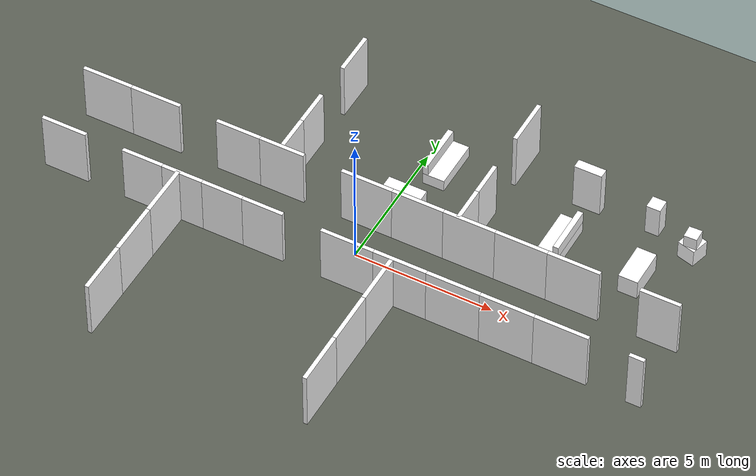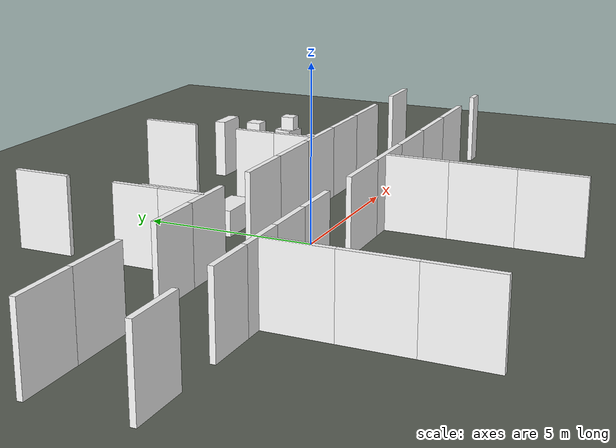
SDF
<sdf version="1.9">
 <world name="office_0">
  <model name="ground_plane">
   <static>true</static>
   <link name="link">
    <collision name="collision">
     <geometry><plane><normal>0 0 1</normal><size>300.000 300.000</size></plane></geometry>
     <surface><friction><ode><mu>1.0</mu><mu2>1.0</mu2></ode></friction></surface>
    </collision>
    <visual name="visual">
     <geometry><plane><normal>0 0 1</normal><size>300.000 300.000</size></plane></geometry>
     <material>
      <ambient>0.350 0.370 0.330 1</ambient>
      <diffuse>0.350 0.370 0.330 1</diffuse>
      <specular>0.08 0.08 0.08 1</specular>
     </material>
    </visual>
   </link>
  </model>
  <model name="wall_6">
   <static>true</static>
   <link name="link">
    <collision name="c0">
     <pose>-10.073 1.300 1.100 0.0000 0.0000 0.0000</pose>
     <geometry><box><size>1.856 0.150 2.200</size></box></geometry>
    </collision>
    <visual name="v0">
     <pose>-10.073 1.300 1.100 0.0000 0.0000 0.0000</pose>
     <geometry><box><size>1.856 0.150 2.200</size></box></geometry>
     <material>
      <ambient>1.000 1.000 1.000 1</ambient>
      <diffuse>1.000 1.000 1.000 1</diffuse>
      <specular>0.08 0.08 0.08 1</specular>
      <pbr>
       <metal>
        <albedo_map>model://omnivla_textures/materials/textures/poster_7.png</albedo_map>
        <roughness>0.85</roughness>
        <metalness>0.0</metalness>
       </metal>
      </pbr>
     </material>
    </visual>
    <collision name="c1">
     <pose>-8.219 1.300 1.100 0.0000 0.0000 0.0000</pose>
     <geometry><box><size>1.856 0.150 2.200</size></box></geometry>
    </collision>
    <visual name="v1">
     <pose>-8.219 1.300 1.100 0.0000 0.0000 0.0000</pose>
     <geometry><box><size>1.856 0.150 2.200</size></box></geometry>
     <material>
      <ambient>1.000 1.000 1.000 1</ambient>
      <diffuse>1.000 1.000 1.000 1</diffuse>
      <specular>0.08 0.08 0.08 1</specular>
      <pbr>
       <metal>
        <albedo_map>model://omnivla_textures/materials/textures/paint_salmon.png</albedo_map>
        <roughness>0.85</roughness>
        <metalness>0.0</metalness>
       </metal>
      </pbr>
     </material>
    </visual>
    <collision name="c2">
     <pose>-5.070 1.300 1.100 0.0000 0.0000 0.0000</pose>
     <geometry><box><size>1.645 0.150 2.200</size></box></geometry>
    </collision>
    <visual name="v2">
     <pose>-5.070 1.300 1.100 0.0000 0.0000 0.0000</pose>
     <geometry><box><size>1.645 0.150 2.200</size></box></geometry>
     <material>
      <ambient>1.000 1.000 1.000 1</ambient>
      <diffuse>1.000 1.000 1.000 1</diffuse>
      <specular>0.08 0.08 0.08 1</specular>
      <pbr>
       <metal>
        <albedo_map>model://omnivla_textures/materials/textures/poster_6.png</albedo_map>
        <roughness>0.85</roughness>
        <metalness>0.0</metalness>
       </metal>
      </pbr>
     </material>
    </visual>
    <collision name="c3">
     <pose>-3.427 1.300 1.100 0.0000 0.0000 0.0000</pose>
     <geometry><box><size>1.645 0.150 2.200</size></box></geometry>
    </collision>
    <visual name="v3">
     <pose>-3.427 1.300 1.100 0.0000 0.0000 0.0000</pose>
     <geometry><box><size>1.645 0.150 2.200</size></box></geometry>
     <material>
      <ambient>1.000 1.000 1.000 1</ambient>
      <diffuse>1.000 1.000 1.000 1</diffuse>
      <specular>0.08 0.08 0.08 1</specular>
      <pbr>
       <metal>
        <albedo_map>model://omnivla_textures/materials/textures/poster_3.png</albedo_map>
        <roughness>0.85</roughness>
        <metalness>0.0</metalness>
       </metal>
      </pbr>
     </material>
    </visual>
    <collision name="c4">
     <pose>-0.267 1.300 1.100 0.0000 0.0000 0.0000</pose>
     <geometry><box><size>1.878 0.150 2.200</size></box></geometry>
    </collision>
    <visual name="v4">
     <pose>-0.267 1.300 1.100 0.0000 0.0000 0.0000</pose>
     <geometry><box><size>1.878 0.150 2.200</size></box></geometry>
     <material>
      <ambient>1.000 1.000 1.000 1</ambient>
      <diffuse>1.000 1.000 1.000 1</diffuse>
      <specular>0.08 0.08 0.08 1</specular>
      <pbr>
       <metal>
        <albedo_map>model://omnivla_textures/materials/textures/paint_salmon.png</albedo_map>
        <roughness>0.85</roughness>
        <metalness>0.0</metalness>
       </metal>
      </pbr>
     </material>
    </visual>
    <collision name="c5">
     <pose>1.609 1.300 1.100 0.0000 0.0000 0.0000</pose>
     <geometry><box><size>1.878 0.150 2.200</size></box></geometry>
    </collision>
    <visual name="v5">
     <pose>1.609 1.300 1.100 0.0000 0.0000 0.0000</pose>
     <geometry><box><size>1.878 0.150 2.200</size></box></geometry>
     <material>
      <ambient>1.000 1.000 1.000 1</ambient>
      <diffuse>1.000 1.000 1.000 1</diffuse>
      <specular>0.08 0.08 0.08 1</specular>
      <pbr>
       <metal>
        <albedo_map>model://omnivla_textures/materials/textures/paint_salmon.png</albedo_map>
        <roughness>0.85</roughness>
        <metalness>0.0</metalness>
       </metal>
      </pbr>
     </material>
    </visual>
    <collision name="c6">
     <pose>3.485 1.300 1.100 0.0000 0.0000 0.0000</pose>
     <geometry><box><size>1.878 0.150 2.200</size></box></geometry>
    </collision>
    <visual name="v6">
     <pose>3.485 1.300 1.100 0.0000 0.0000 0.0000</pose>
     <geometry><box><size>1.878 0.150 2.200</size></box></geometry>
     <material>
      <ambient>1.000 1.000 1.000 1</ambient>
      <diffuse>1.000 1.000 1.000 1</diffuse>
      <specular>0.08 0.08 0.08 1</specular>
      <pbr>
       <metal>
        <albedo_map>model://omnivla_textures/materials/textures/poster_6.png</albedo_map>
        <roughness>0.85</roughness>
        <metalness>0.0</metalness>
       </metal>
      </pbr>
     </material>
    </visual>
    <collision name="c7">
     <pose>5.362 1.300 1.100 0.0000 0.0000 0.0000</pose>
     <geometry><box><size>1.878 0.150 2.200</size></box></geometry>
    </collision>
    <visual name="v7">
     <pose>5.362 1.300 1.100 0.0000 0.0000 0.0000</pose>
     <geometry><box><size>1.878 0.150 2.200</size></box></geometry>
     <material>
      <ambient>1.000 1.000 1.000 1</ambient>
      <diffuse>1.000 1.000 1.000 1</diffuse>
      <specular>0.08 0.08 0.08 1</specular>
      <pbr>
       <metal>
        <albedo_map>model://omnivla_textures/materials/textures/paint_salmon.png</albedo_map>
        <roughness>0.85</roughness>
        <metalness>0.0</metalness>
       </metal>
      </pbr>
     </material>
    </visual>
    <collision name="c8">
     <pose>7.238 1.300 1.100 0.0000 0.0000 0.0000</pose>
     <geometry><box><size>1.878 0.150 2.200</size></box></geometry>
    </collision>
    <visual name="v8">
     <pose>7.238 1.300 1.100 0.0000 0.0000 0.0000</pose>
     <geometry><box><size>1.878 0.150 2.200</size></box></geometry>
     <material>
      <ambient>1.000 1.000 1.000 1</ambient>
      <diffuse>1.000 1.000 1.000 1</diffuse>
      <specular>0.08 0.08 0.08 1</specular>
      <pbr>
       <metal>
        <albedo_map>model://omnivla_textures/materials/textures/poster_0.png</albedo_map>
        <roughness>0.85</roughness>
        <metalness>0.0</metalness>
       </metal>
      </pbr>
     </material>
    </visual>
    <collision name="c9">
     <pose>10.288 1.300 1.100 0.0000 0.0000 0.0000</pose>
     <geometry><box><size>1.426 0.150 2.200</size></box></geometry>
    </collision>
    <visual name="v9">
     <pose>10.288 1.300 1.100 0.0000 0.0000 0.0000</pose>
     <geometry><box><size>1.426 0.150 2.200</size></box></geometry>
     <material>
      <ambient>1.000 1.000 1.000 1</ambient>
      <diffuse>1.000 1.000 1.000 1</diffuse>
      <specular>0.08 0.08 0.08 1</specular>
      <pbr>
       <metal>
        <albedo_map>model://omnivla_textures/materials/textures/poster_5.png</albedo_map>
        <roughness>0.85</roughness>
        <metalness>0.0</metalness>
       </metal>
      </pbr>
     </material>
    </visual>
   </link>
  </model>
  <model name="wall_7">
   <static>true</static>
   <link name="link">
    <collision name="c0">
     <pose>-3.452 1.971 1.100 0.0000 0.0000 1.5708</pose>
     <geometry><box><size>1.344 0.150 2.200</size></box></geometry>
    </collision>
    <visual name="v0">
     <pose>-3.452 1.971 1.100 0.0000 0.0000 1.5708</pose>
     <geometry><box><size>1.344 0.150 2.200</size></box></geometry>
     <material>
      <ambient>1.000 1.000 1.000 1</ambient>
      <diffuse>1.000 1.000 1.000 1</diffuse>
      <specular>0.08 0.08 0.08 1</specular>
      <pbr>
       <metal>
        <albedo_map>model://omnivla_textures/materials/textures/paint_gray.png</albedo_map>
        <roughness>0.85</roughness>
        <metalness>0.0</metalness>
       </metal>
      </pbr>
     </material>
    </visual>
    <collision name="c1">
     <pose>-3.452 3.312 1.100 0.0000 0.0000 1.5708</pose>
     <geometry><box><size>1.344 0.150 2.200</size></box></geometry>
    </collision>
    <visual name="v1">
     <pose>-3.452 3.312 1.100 0.0000 0.0000 1.5708</pose>
     <geometry><box><size>1.344 0.150 2.200</size></box></geometry>
     <material>
      <ambient>1.000 1.000 1.000 1</ambient>
      <diffuse>1.000 1.000 1.000 1</diffuse>
      <specular>0.08 0.08 0.08 1</specular>
      <pbr>
       <metal>
        <albedo_map>model://omnivla_textures/materials/textures/paint_gray.png</albedo_map>
        <roughness>0.85</roughness>
        <metalness>0.0</metalness>
       </metal>
      </pbr>
     </material>
    </visual>
    <collision name="c2">
     <pose>-3.452 6.192 1.100 0.0000 0.0000 1.5708</pose>
     <geometry><box><size>1.619 0.150 2.200</size></box></geometry>
    </collision>
    <visual name="v2">
     <pose>-3.452 6.192 1.100 0.0000 0.0000 1.5708</pose>
     <geometry><box><size>1.619 0.150 2.200</size></box></geometry>
     <material>
      <ambient>1.000 1.000 1.000 1</ambient>
      <diffuse>1.000 1.000 1.000 1</diffuse>
      <specular>0.08 0.08 0.08 1</specular>
      <pbr>
       <metal>
        <albedo_map>model://omnivla_textures/materials/textures/paint_gray.png</albedo_map>
        <roughness>0.85</roughness>
        <metalness>0.0</metalness>
       </metal>
      </pbr>
     </material>
    </visual>
   </link>
  </model>
  <model name="wall_8">
   <static>true</static>
   <link name="link">
    <collision name="c0">
     <pose>3.079 1.938 1.100 0.0000 0.0000 1.5708</pose>
     <geometry><box><size>1.277 0.150 2.200</size></box></geometry>
    </collision>
    <visual name="v0">
     <pose>3.079 1.938 1.100 0.0000 0.0000 1.5708</pose>
     <geometry><box><size>1.277 0.150 2.200</size></box></geometry>
     <material>
      <ambient>1.000 1.000 1.000 1</ambient>
      <diffuse>1.000 1.000 1.000 1</diffuse>
      <specular>0.08 0.08 0.08 1</specular>
      <pbr>
       <metal>
        <albedo_map>model://omnivla_textures/materials/textures/brick_white.png</albedo_map>
        <roughness>0.85</roughness>
        <metalness>0.0</metalness>
       </metal>
      </pbr>
     </material>
    </visual>
    <collision name="c1">
     <pose>3.079 3.213 1.100 0.0000 0.0000 1.5708</pose>
     <geometry><box><size>1.277 0.150 2.200</size></box></geometry>
    </collision>
    <visual name="v1">
     <pose>3.079 3.213 1.100 0.0000 0.0000 1.5708</pose>
     <geometry><box><size>1.277 0.150 2.200</size></box></geometry>
     <material>
      <ambient>1.000 1.000 1.000 1</ambient>
      <diffuse>1.000 1.000 1.000 1</diffuse>
      <specular>0.08 0.08 0.08 1</specular>
      <pbr>
       <metal>
        <albedo_map>model://omnivla_textures/materials/textures/brick_white.png</albedo_map>
        <roughness>0.85</roughness>
        <metalness>0.0</metalness>
       </metal>
      </pbr>
     </material>
    </visual>
    <collision name="c2">
     <pose>3.079 6.125 1.100 0.0000 0.0000 1.5708</pose>
     <geometry><box><size>1.752 0.150 2.200</size></box></geometry>
    </collision>
    <visual name="v2">
     <pose>3.079 6.125 1.100 0.0000 0.0000 1.5708</pose>
     <geometry><box><size>1.752 0.150 2.200</size></box></geometry>
     <material>
      <ambient>1.000 1.000 1.000 1</ambient>
      <diffuse>1.000 1.000 1.000 1</diffuse>
      <specular>0.08 0.08 0.08 1</specular>
      <pbr>
       <metal>
        <albedo_map>model://omnivla_textures/materials/textures/brick_white.png</albedo_map>
        <roughness>0.85</roughness>
        <metalness>0.0</metalness>
       </metal>
      </pbr>
     </material>
    </visual>
   </link>
  </model>
  <model name="wall_9">
   <static>true</static>
   <link name="link">
    <collision name="c0">
     <pose>-10.162 -1.300 1.100 0.0000 0.0000 0.0000</pose>
     <geometry><box><size>1.677 0.150 2.200</size></box></geometry>
    </collision>
    <visual name="v0">
     <pose>-10.162 -1.300 1.100 0.0000 0.0000 0.0000</pose>
     <geometry><box><size>1.677 0.150 2.200</size></box></geometry>
     <material>
      <ambient>1.000 1.000 1.000 1</ambient>
      <diffuse>1.000 1.000 1.000 1</diffuse>
      <specular>0.08 0.08 0.08 1</specular>
      <pbr>
       <metal>
        <albedo_map>model://omnivla_textures/materials/textures/brick_red.png</albedo_map>
        <roughness>0.85</roughness>
        <metalness>0.0</metalness>
       </metal>
      </pbr>
     </material>
    </visual>
    <collision name="c1">
     <pose>-7.175 -1.300 1.100 0.0000 0.0000 0.0000</pose>
     <geometry><box><size>1.502 0.150 2.200</size></box></geometry>
    </collision>
    <visual name="v1">
     <pose>-7.175 -1.300 1.100 0.0000 0.0000 0.0000</pose>
     <geometry><box><size>1.502 0.150 2.200</size></box></geometry>
     <material>
      <ambient>1.000 1.000 1.000 1</ambient>
      <diffuse>1.000 1.000 1.000 1</diffuse>
      <specular>0.08 0.08 0.08 1</specular>
      <pbr>
       <metal>
        <albedo_map>model://omnivla_textures/materials/textures/brick_red.png</albedo_map>
        <roughness>0.85</roughness>
        <metalness>0.0</metalness>
       </metal>
      </pbr>
     </material>
    </visual>
    <collision name="c2">
     <pose>-5.674 -1.300 1.100 0.0000 0.0000 0.0000</pose>
     <geometry><box><size>1.502 0.150 2.200</size></box></geometry>
    </collision>
    <visual name="v2">
     <pose>-5.674 -1.300 1.100 0.0000 0.0000 0.0000</pose>
     <geometry><box><size>1.502 0.150 2.200</size></box></geometry>
     <material>
      <ambient>1.000 1.000 1.000 1</ambient>
      <diffuse>1.000 1.000 1.000 1</diffuse>
      <specular>0.08 0.08 0.08 1</specular>
      <pbr>
       <metal>
        <albedo_map>model://omnivla_textures/materials/textures/brick_red.png</albedo_map>
        <roughness>0.85</roughness>
        <metalness>0.0</metalness>
       </metal>
      </pbr>
     </material>
    </visual>
    <collision name="c3">
     <pose>-4.174 -1.300 1.100 0.0000 0.0000 0.0000</pose>
     <geometry><box><size>1.502 0.150 2.200</size></box></geometry>
    </collision>
    <visual name="v3">
     <pose>-4.174 -1.300 1.100 0.0000 0.0000 0.0000</pose>
     <geometry><box><size>1.502 0.150 2.200</size></box></geometry>
     <material>
      <ambient>1.000 1.000 1.000 1</ambient>
      <diffuse>1.000 1.000 1.000 1</diffuse>
      <specular>0.08 0.08 0.08 1</specular>
      <pbr>
       <metal>
        <albedo_map>model://omnivla_textures/materials/textures/brick_red.png</albedo_map>
        <roughness>0.85</roughness>
        <metalness>0.0</metalness>
       </metal>
      </pbr>
     </material>
    </visual>
    <collision name="c4">
     <pose>-2.674 -1.300 1.100 0.0000 0.0000 0.0000</pose>
     <geometry><box><size>1.502 0.150 2.200</size></box></geometry>
    </collision>
    <visual name="v4">
     <pose>-2.674 -1.300 1.100 0.0000 0.0000 0.0000</pose>
     <geometry><box><size>1.502 0.150 2.200</size></box></geometry>
     <material>
      <ambient>1.000 1.000 1.000 1</ambient>
      <diffuse>1.000 1.000 1.000 1</diffuse>
      <specular>0.08 0.08 0.08 1</specular>
      <pbr>
       <metal>
        <albedo_map>model://omnivla_textures/materials/textures/brick_red.png</albedo_map>
        <roughness>0.85</roughness>
        <metalness>0.0</metalness>
       </metal>
      </pbr>
     </material>
    </visual>
    <collision name="c5">
     <pose>0.436 -1.300 1.100 0.0000 0.0000 0.0000</pose>
     <geometry><box><size>1.920 0.150 2.200</size></box></geometry>
    </collision>
    <visual name="v5">
     <pose>0.436 -1.300 1.100 0.0000 0.0000 0.0000</pose>
     <geometry><box><size>1.920 0.150 2.200</size></box></geometry>
     <material>
      <ambient>1.000 1.000 1.000 1</ambient>
      <diffuse>1.000 1.000 1.000 1</diffuse>
      <specular>0.08 0.08 0.08 1</specular>
      <pbr>
       <metal>
        <albedo_map>model://omnivla_textures/materials/textures/brick_red.png</albedo_map>
        <roughness>0.85</roughness>
        <metalness>0.0</metalness>
       </metal>
      </pbr>
     </material>
    </visual>
    <collision name="c6">
     <pose>2.354 -1.300 1.100 0.0000 0.0000 0.0000</pose>
     <geometry><box><size>1.920 0.150 2.200</size></box></geometry>
    </collision>
    <visual name="v6">
     <pose>2.354 -1.300 1.100 0.0000 0.0000 0.0000</pose>
     <geometry><box><size>1.920 0.150 2.200</size></box></geometry>
     <material>
      <ambient>1.000 1.000 1.000 1</ambient>
      <diffuse>1.000 1.000 1.000 1</diffuse>
      <specular>0.08 0.08 0.08 1</specular>
      <pbr>
       <metal>
        <albedo_map>model://omnivla_textures/materials/textures/brick_red.png</albedo_map>
        <roughness>0.85</roughness>
        <metalness>0.0</metalness>
       </metal>
      </pbr>
     </material>
    </visual>
    <collision name="c7">
     <pose>4.272 -1.300 1.100 0.0000 0.0000 0.0000</pose>
     <geometry><box><size>1.920 0.150 2.200</size></box></geometry>
    </collision>
    <visual name="v7">
     <pose>4.272 -1.300 1.100 0.0000 0.0000 0.0000</pose>
     <geometry><box><size>1.920 0.150 2.200</size></box></geometry>
     <material>
      <ambient>1.000 1.000 1.000 1</ambient>
      <diffuse>1.000 1.000 1.000 1</diffuse>
      <specular>0.08 0.08 0.08 1</specular>
      <pbr>
       <metal>
        <albedo_map>model://omnivla_textures/materials/textures/brick_red.png</albedo_map>
        <roughness>0.85</roughness>
        <metalness>0.0</metalness>
       </metal>
      </pbr>
     </material>
    </visual>
    <collision name="c8">
     <pose>6.191 -1.300 1.100 0.0000 0.0000 0.0000</pose>
     <geometry><box><size>1.920 0.150 2.200</size></box></geometry>
    </collision>
    <visual name="v8">
     <pose>6.191 -1.300 1.100 0.0000 0.0000 0.0000</pose>
     <geometry><box><size>1.920 0.150 2.200</size></box></geometry>
     <material>
      <ambient>1.000 1.000 1.000 1</ambient>
      <diffuse>1.000 1.000 1.000 1</diffuse>
      <specular>0.08 0.08 0.08 1</specular>
      <pbr>
       <metal>
        <albedo_map>model://omnivla_textures/materials/textures/brick_red.png</albedo_map>
        <roughness>0.85</roughness>
        <metalness>0.0</metalness>
       </metal>
      </pbr>
     </material>
    </visual>
    <collision name="c9">
     <pose>8.109 -1.300 1.100 0.0000 0.0000 0.0000</pose>
     <geometry><box><size>1.920 0.150 2.200</size></box></geometry>
    </collision>
    <visual name="v9">
     <pose>8.109 -1.300 1.100 0.0000 0.0000 0.0000</pose>
     <geometry><box><size>1.920 0.150 2.200</size></box></geometry>
     <material>
      <ambient>1.000 1.000 1.000 1</ambient>
      <diffuse>1.000 1.000 1.000 1</diffuse>
      <specular>0.08 0.08 0.08 1</specular>
      <pbr>
       <metal>
        <albedo_map>model://omnivla_textures/materials/textures/brick_red.png</albedo_map>
        <roughness>0.85</roughness>
        <metalness>0.0</metalness>
       </metal>
      </pbr>
     </material>
    </visual>
    <collision name="c10">
     <pose>10.734 -1.300 1.100 0.0000 0.0000 0.0000</pose>
     <geometry><box><size>0.534 0.150 2.200</size></box></geometry>
    </collision>
    <visual name="v10">
     <pose>10.734 -1.300 1.100 0.0000 0.0000 0.0000</pose>
     <geometry><box><size>0.534 0.150 2.200</size></box></geometry>
     <material>
      <ambient>1.000 1.000 1.000 1</ambient>
      <diffuse>1.000 1.000 1.000 1</diffuse>
      <specular>0.08 0.08 0.08 1</specular>
      <pbr>
       <metal>
        <albedo_map>model://omnivla_textures/materials/textures/poster_1.png</albedo_map>
        <roughness>0.85</roughness>
        <metalness>0.0</metalness>
       </metal>
      </pbr>
     </material>
    </visual>
   </link>
  </model>
  <model name="wall_10">
   <static>true</static>
   <link name="link">
    <collision name="c0">
     <pose>-5.836 -6.050 1.100 0.0000 0.0000 1.5708</pose>
     <geometry><box><size>1.902 0.150 2.200</size></box></geometry>
    </collision>
    <visual name="v0">
     <pose>-5.836 -6.050 1.100 0.0000 0.0000 1.5708</pose>
     <geometry><box><size>1.902 0.150 2.200</size></box></geometry>
     <material>
      <ambient>1.000 1.000 1.000 1</ambient>
      <diffuse>1.000 1.000 1.000 1</diffuse>
      <specular>0.08 0.08 0.08 1</specular>
      <pbr>
       <metal>
        <albedo_map>model://omnivla_textures/materials/textures/paint_yellow.png</albedo_map>
        <roughness>0.85</roughness>
        <metalness>0.0</metalness>
       </metal>
      </pbr>
     </material>
    </visual>
    <collision name="c1">
     <pose>-5.836 -4.150 1.100 0.0000 0.0000 1.5708</pose>
     <geometry><box><size>1.902 0.150 2.200</size></box></geometry>
    </collision>
    <visual name="v1">
     <pose>-5.836 -4.150 1.100 0.0000 0.0000 1.5708</pose>
     <geometry><box><size>1.902 0.150 2.200</size></box></geometry>
     <material>
      <ambient>1.000 1.000 1.000 1</ambient>
      <diffuse>1.000 1.000 1.000 1</diffuse>
      <specular>0.08 0.08 0.08 1</specular>
      <pbr>
       <metal>
        <albedo_map>model://omnivla_textures/materials/textures/poster_1.png</albedo_map>
        <roughness>0.85</roughness>
        <metalness>0.0</metalness>
       </metal>
      </pbr>
     </material>
    </visual>
    <collision name="c2">
     <pose>-5.836 -2.250 1.100 0.0000 0.0000 1.5708</pose>
     <geometry><box><size>1.902 0.150 2.200</size></box></geometry>
    </collision>
    <visual name="v2">
     <pose>-5.836 -2.250 1.100 0.0000 0.0000 1.5708</pose>
     <geometry><box><size>1.902 0.150 2.200</size></box></geometry>
     <material>
      <ambient>1.000 1.000 1.000 1</ambient>
      <diffuse>1.000 1.000 1.000 1</diffuse>
      <specular>0.08 0.08 0.08 1</specular>
      <pbr>
       <metal>
        <albedo_map>model://omnivla_textures/materials/textures/paint_yellow.png</albedo_map>
        <roughness>0.85</roughness>
        <metalness>0.0</metalness>
       </metal>
      </pbr>
     </material>
    </visual>
   </link>
  </model>
  <model name="wall_11">
   <static>true</static>
   <link name="link">
    <collision name="c0">
     <pose>2.066 -6.050 1.100 0.0000 0.0000 1.5708</pose>
     <geometry><box><size>1.902 0.150 2.200</size></box></geometry>
    </collision>
    <visual name="v0">
     <pose>2.066 -6.050 1.100 0.0000 0.0000 1.5708</pose>
     <geometry><box><size>1.902 0.150 2.200</size></box></geometry>
     <material>
      <ambient>1.000 1.000 1.000 1</ambient>
      <diffuse>1.000 1.000 1.000 1</diffuse>
      <specular>0.08 0.08 0.08 1</specular>
      <pbr>
       <metal>
        <albedo_map>model://omnivla_textures/materials/textures/poster_4.png</albedo_map>
        <roughness>0.85</roughness>
        <metalness>0.0</metalness>
       </metal>
      </pbr>
     </material>
    </visual>
    <collision name="c1">
     <pose>2.066 -4.150 1.100 0.0000 0.0000 1.5708</pose>
     <geometry><box><size>1.902 0.150 2.200</size></box></geometry>
    </collision>
    <visual name="v1">
     <pose>2.066 -4.150 1.100 0.0000 0.0000 1.5708</pose>
     <geometry><box><size>1.902 0.150 2.200</size></box></geometry>
     <material>
      <ambient>1.000 1.000 1.000 1</ambient>
      <diffuse>1.000 1.000 1.000 1</diffuse>
      <specular>0.08 0.08 0.08 1</specular>
      <pbr>
       <metal>
        <albedo_map>model://omnivla_textures/materials/textures/brick_white.png</albedo_map>
        <roughness>0.85</roughness>
        <metalness>0.0</metalness>
       </metal>
      </pbr>
     </material>
    </visual>
    <collision name="c2">
     <pose>2.066 -2.250 1.100 0.0000 0.0000 1.5708</pose>
     <geometry><box><size>1.902 0.150 2.200</size></box></geometry>
    </collision>
    <visual name="v2">
     <pose>2.066 -2.250 1.100 0.0000 0.0000 1.5708</pose>
     <geometry><box><size>1.902 0.150 2.200</size></box></geometry>
     <material>
      <ambient>1.000 1.000 1.000 1</ambient>
      <diffuse>1.000 1.000 1.000 1</diffuse>
      <specular>0.08 0.08 0.08 1</specular>
      <pbr>
       <metal>
        <albedo_map>model://omnivla_textures/materials/textures/brick_white.png</albedo_map>
        <roughness>0.85</roughness>
        <metalness>0.0</metalness>
       </metal>
      </pbr>
     </material>
    </visual>
   </link>
  </model>
  <model name="desk_520">
   <static>true</static>
   <pose>0.339 2.639 0.000 0.0000 0.0000 3.1416</pose>
   <link name="link">
    <collision name="c0">
     <pose>0.000 0.000 0.375 0.0000 0.0000 0.0000</pose>
     <geometry><box><size>1.400 0.700 0.750</size></box></geometry>
    </collision>
    <visual name="v0">
     <pose>0.000 0.000 0.375 0.0000 0.0000 0.0000</pose>
     <geometry><box><size>1.400 0.700 0.750</size></box></geometry>
     <material>
      <ambient>1.000 1.000 1.000 1</ambient>
      <diffuse>1.000 1.000 1.000 1</diffuse>
      <specular>0.08 0.08 0.08 1</specular>
      <pbr>
       <metal>
        <albedo_map>model://omnivla_textures/materials/textures/wood_floor.png</albedo_map>
        <roughness>0.85</roughness>
        <metalness>0.0</metalness>
       </metal>
      </pbr>
     </material>
    </visual>
   </link>
  </model>
  <model name="sofa_591">
   <static>true</static>
   <pose>0.794 4.794 0.000 0.0000 0.0000 -1.5708</pose>
   <link name="link">
    <collision name="c0">
     <pose>0.000 0.000 0.225 0.0000 0.0000 0.0000</pose>
     <geometry><box><size>1.800 0.800 0.450</size></box></geometry>
    </collision>
    <visual name="v0">
     <pose>0.000 0.000 0.225 0.0000 0.0000 0.0000</pose>
     <geometry><box><size>1.800 0.800 0.450</size></box></geometry>
     <material>
      <ambient>1.000 1.000 1.000 1</ambient>
      <diffuse>1.000 1.000 1.000 1</diffuse>
      <specular>0.08 0.08 0.08 1</specular>
      <pbr>
       <metal>
        <albedo_map>model://omnivla_textures/materials/textures/fabric_red.png</albedo_map>
        <roughness>0.85</roughness>
        <metalness>0.0</metalness>
       </metal>
      </pbr>
     </material>
    </visual>
    <collision name="c1">
     <pose>0.000 -0.300 0.675 0.0000 0.0000 0.0000</pose>
     <geometry><box><size>1.800 0.200 0.450</size></box></geometry>
    </collision>
    <visual name="v1">
     <pose>0.000 -0.300 0.675 0.0000 0.0000 0.0000</pose>
     <geometry><box><size>1.800 0.200 0.450</size></box></geometry>
     <material>
      <ambient>1.000 1.000 1.000 1</ambient>
      <diffuse>1.000 1.000 1.000 1</diffuse>
      <specular>0.08 0.08 0.08 1</specular>
      <pbr>
       <metal>
        <albedo_map>model://omnivla_textures/materials/textures/fabric_red.png</albedo_map>
        <roughness>0.85</roughness>
        <metalness>0.0</metalness>
       </metal>
      </pbr>
     </material>
    </visual>
   </link>
  </model>
  <model name="desk_957">
   <static>true</static>
   <pose>8.525 3.388 0.000 0.0000 0.0000 -1.5708</pose>
   <link name="link">
    <collision name="c0">
     <pose>0.000 0.000 0.375 0.0000 0.0000 0.0000</pose>
     <geometry><box><size>1.400 0.700 0.750</size></box></geometry>
    </collision>
    <visual name="v0">
     <pose>0.000 0.000 0.375 0.0000 0.0000 0.0000</pose>
     <geometry><box><size>1.400 0.700 0.750</size></box></geometry>
     <material>
      <ambient>1.000 1.000 1.000 1</ambient>
      <diffuse>1.000 1.000 1.000 1</diffuse>
      <specular>0.08 0.08 0.08 1</specular>
      <pbr>
       <metal>
        <albedo_map>model://omnivla_textures/materials/textures/wood_floor.png</albedo_map>
        <roughness>0.85</roughness>
        <metalness>0.0</metalness>
       </metal>
      </pbr>
     </material>
    </visual>
   </link>
  </model>
  <model name="shelf_967">
   <static>true</static>
   <pose>5.680 5.583 0.000 0.0000 0.0000 3.1416</pose>
   <link name="link">
    <collision name="c0">
     <pose>0.000 0.000 0.900 0.0000 0.0000 0.0000</pose>
     <geometry><box><size>1.000 0.350 1.800</size></box></geometry>
    </collision>
    <visual name="v0">
     <pose>0.000 0.000 0.900 0.0000 0.0000 0.0000</pose>
     <geometry><box><size>1.000 0.350 1.800</size></box></geometry>
     <material>
      <ambient>1.000 1.000 1.000 1</ambient>
      <diffuse>1.000 1.000 1.000 1</diffuse>
      <specular>0.08 0.08 0.08 1</specular>
      <pbr>
       <metal>
        <albedo_map>model://omnivla_textures/materials/textures/bookshelf.png</albedo_map>
        <roughness>0.85</roughness>
        <metalness>0.0</metalness>
       </metal>
      </pbr>
     </material>
    </visual>
   </link>
  </model>
  <model name="cabinet_968">
   <static>true</static>
   <pose>8.053 5.712 0.000 0.0000 0.0000 0.0000</pose>
   <link name="link">
    <collision name="c0">
     <pose>0.000 0.000 0.600 0.0000 0.0000 0.0000</pose>
     <geometry><box><size>0.500 0.500 1.200</size></box></geometry>
    </collision>
    <visual name="v0">
     <pose>0.000 0.000 0.600 0.0000 0.0000 0.0000</pose>
     <geometry><box><size>0.500 0.500 1.200</size></box></geometry>
     <material>
      <ambient>1.000 1.000 1.000 1</ambient>
      <diffuse>1.000 1.000 1.000 1</diffuse>
      <specular>0.08 0.08 0.08 1</specular>
      <pbr>
       <metal>
        <albedo_map>model://omnivla_textures/materials/textures/metal.png</albedo_map>
        <roughness>0.85</roughness>
        <metalness>0.0</metalness>
       </metal>
      </pbr>
     </material>
    </visual>
   </link>
  </model>
  <model name="sofa_982">
   <static>true</static>
   <pose>5.623 3.573 0.000 0.0000 0.0000 1.5708</pose>
   <link name="link">
    <collision name="c0">
     <pose>0.000 0.000 0.225 0.0000 0.0000 0.0000</pose>
     <geometry><box><size>1.800 0.800 0.450</size></box></geometry>
    </collision>
    <visual name="v0">
     <pose>0.000 0.000 0.225 0.0000 0.0000 0.0000</pose>
     <geometry><box><size>1.800 0.800 0.450</size></box></geometry>
     <material>
      <ambient>1.000 1.000 1.000 1</ambient>
      <diffuse>1.000 1.000 1.000 1</diffuse>
      <specular>0.08 0.08 0.08 1</specular>
      <pbr>
       <metal>
        <albedo_map>model://omnivla_textures/materials/textures/fabric_blue.png</albedo_map>
        <roughness>0.85</roughness>
        <metalness>0.0</metalness>
       </metal>
      </pbr>
     </material>
    </visual>
    <collision name="c1">
     <pose>0.000 -0.300 0.675 0.0000 0.0000 0.0000</pose>
     <geometry><box><size>1.800 0.200 0.450</size></box></geometry>
    </collision>
    <visual name="v1">
     <pose>0.000 -0.300 0.675 0.0000 0.0000 0.0000</pose>
     <geometry><box><size>1.800 0.200 0.450</size></box></geometry>
     <material>
      <ambient>1.000 1.000 1.000 1</ambient>
      <diffuse>1.000 1.000 1.000 1</diffuse>
      <specular>0.08 0.08 0.08 1</specular>
      <pbr>
       <metal>
        <albedo_map>model://omnivla_textures/materials/textures/fabric_blue.png</albedo_map>
        <roughness>0.85</roughness>
        <metalness>0.0</metalness>
       </metal>
      </pbr>
     </material>
    </visual>
   </link>
  </model>
  <model name="crate_1203">
   <static>true</static>
   <pose>9.618 5.227 0.000 0.0000 0.0000 -1.8373</pose>
   <link name="link">
    <collision name="c0">
     <pose>0.000 0.000 0.332 0.0000 0.0000 0.0000</pose>
     <geometry><box><size>0.664 0.664 0.664</size></box></geometry>
    </collision>
    <visual name="v0">
     <pose>0.000 0.000 0.332 0.0000 0.0000 0.0000</pose>
     <geometry><box><size>0.664 0.664 0.664</size></box></geometry>
     <material>
      <ambient>1.000 1.000 1.000 1</ambient>
      <diffuse>1.000 1.000 1.000 1</diffuse>
      <specular>0.08 0.08 0.08 1</specular>
      <pbr>
       <metal>
        <albedo_map>model://omnivla_textures/materials/textures/cardboard.png</albedo_map>
        <roughness>0.85</roughness>
        <metalness>0.0</metalness>
       </metal>
      </pbr>
     </material>
    </visual>
    <collision name="c1">
     <pose>0.050 0.030 0.897 0.0000 0.0000 0.3000</pose>
     <geometry><box><size>0.465 0.465 0.465</size></box></geometry>
    </collision>
    <visual name="v1">
     <pose>0.050 0.030 0.897 0.0000 0.0000 0.3000</pose>
     <geometry><box><size>0.465 0.465 0.465</size></box></geometry>
     <material>
      <ambient>1.000 1.000 1.000 1</ambient>
      <diffuse>1.000 1.000 1.000 1</diffuse>
      <specular>0.08 0.08 0.08 1</specular>
      <pbr>
       <metal>
        <albedo_map>model://omnivla_textures/materials/textures/cardboard.png</albedo_map>
        <roughness>0.85</roughness>
        <metalness>0.0</metalness>
       </metal>
      </pbr>
     </material>
    </visual>
   </link>
  </model>
 </world>
</sdf>
